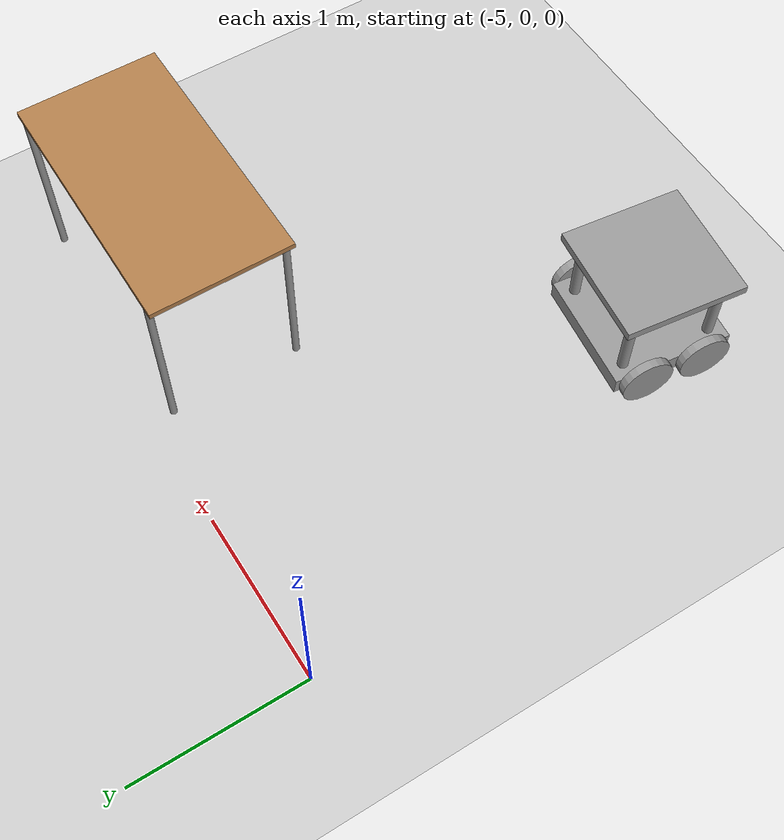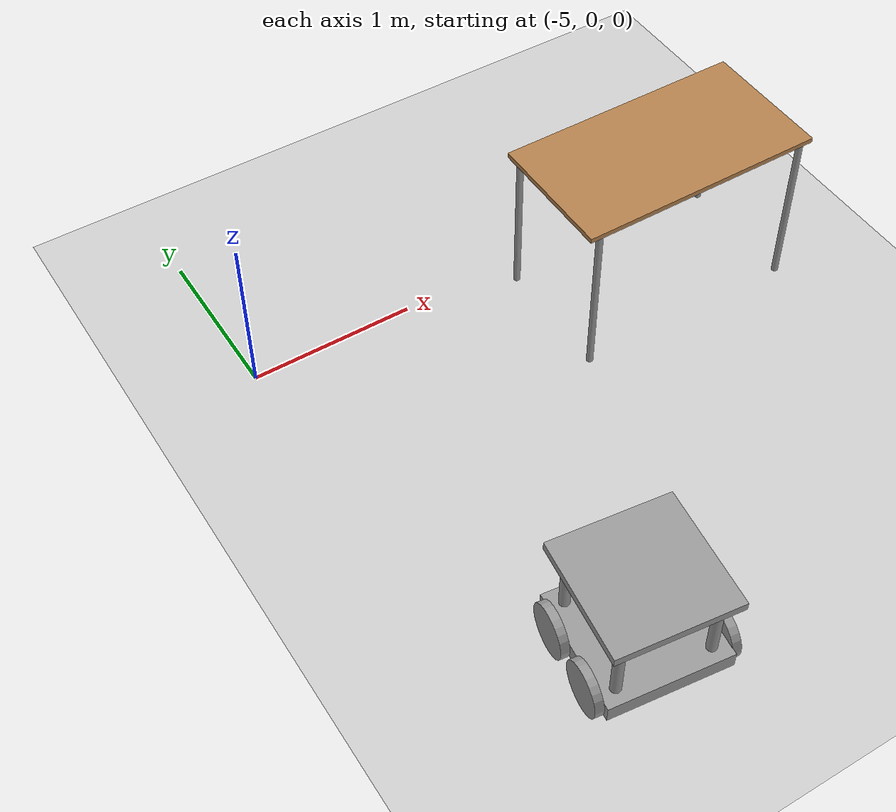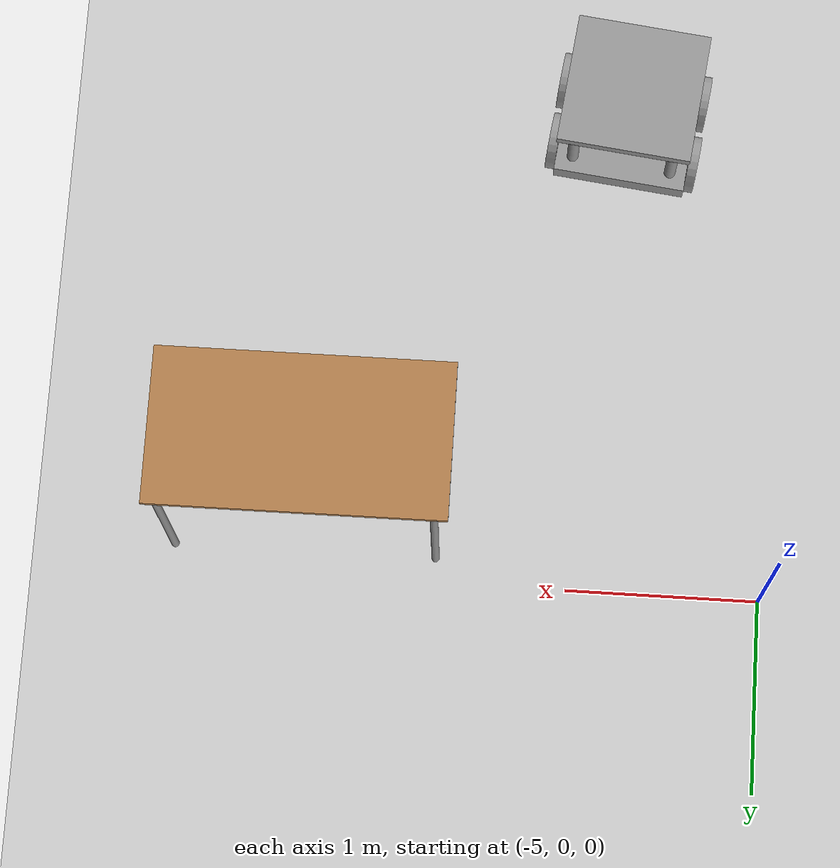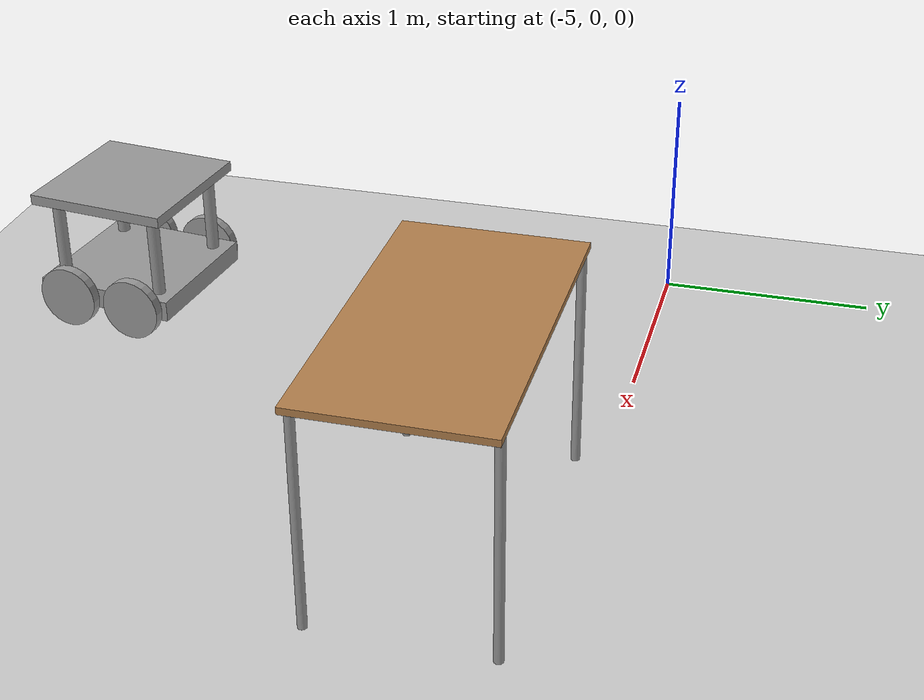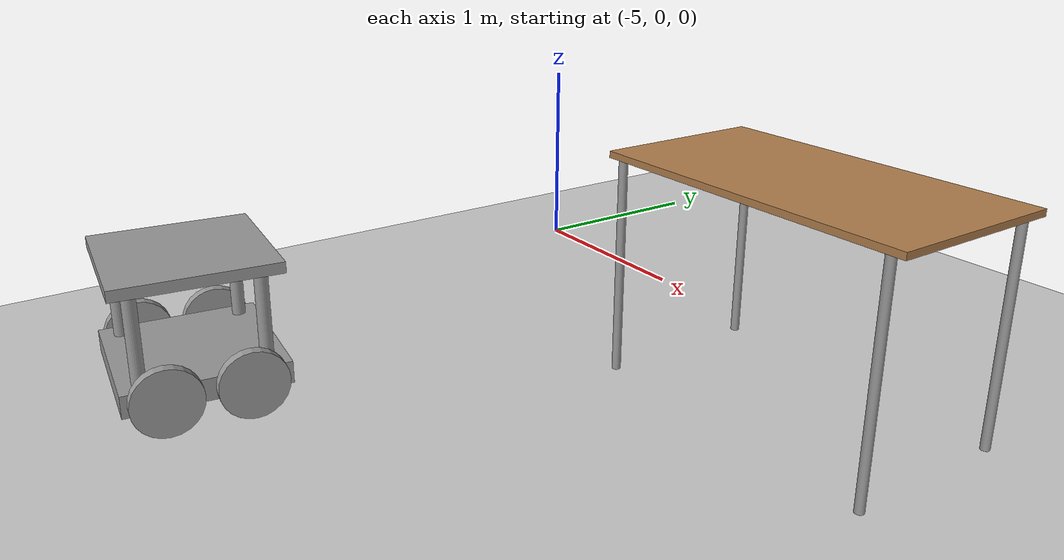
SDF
<sdf version="1.6">
 <world name="default">
  <model name="ground_plane">
   <static>1</static>
   <link name="link">
    <collision name="collision">
     <geometry><plane><normal>0 0 1</normal><size>100 100</size></plane></geometry>
     <surface>
      <contact><collide_bitmask>65535</collide_bitmask></contact>
      <friction><ode><mu>100</mu><mu2>50</mu2></ode></friction>
     </surface>
    </collision>
    <visual name="visual">
     <cast_shadows>0</cast_shadows>
     <geometry><plane><normal>0 0 1</normal><size>100 100</size></plane></geometry>
     <material>
      <script><uri>file://media/materials/scripts/gazebo.material</uri><name>Gazebo/Grey</name></script>
     </material>
    </visual>
   </link>
  </model>
  <model name="table">
   <static>1</static>
   <link name="link">
    <collision name="surface">
     <pose>0 0 1 0 -0 0</pose>
     <geometry><box><size>1.5 0.8 0.03</size></box></geometry>
     <surface><friction><ode><mu>0.6</mu><mu2>0.6</mu2></ode></friction></surface>
    </collision>
    <visual name="visual1">
     <pose>0 0 1 0 -0 0</pose>
     <geometry><box><size>1.5 0.8 0.03</size></box></geometry>
     <material>
      <script><uri>file://media/materials/scripts/gazebo.material</uri><name>Gazebo/Wood</name></script>
     </material>
    </visual>
    <collision name="front_left_leg">
     <pose>0.68 0.38 0.5 0 -0 0</pose>
     <geometry><cylinder><radius>0.02</radius><length>1</length></cylinder></geometry>
    </collision>
    <visual name="front_left_leg">
     <pose>0.68 0.38 0.5 0 -0 0</pose>
     <geometry><cylinder><radius>0.02</radius><length>1</length></cylinder></geometry>
     <material>
      <script><uri>file://media/materials/scripts/gazebo.material</uri><name>Gazebo/Grey</name></script>
     </material>
    </visual>
    <collision name="front_right_leg">
     <pose>0.68 -0.38 0.5 0 -0 0</pose>
     <geometry><cylinder><radius>0.02</radius><length>1</length></cylinder></geometry>
    </collision>
    <visual name="front_right_leg">
     <pose>0.68 -0.38 0.5 0 -0 0</pose>
     <geometry><cylinder><radius>0.02</radius><length>1</length></cylinder></geometry>
     <material>
      <script><uri>file://media/materials/scripts/gazebo.material</uri><name>Gazebo/Grey</name></script>
     </material>
    </visual>
    <collision name="back_right_leg">
     <pose>-0.68 -0.38 0.5 0 -0 0</pose>
     <geometry><cylinder><radius>0.02</radius><length>1</length></cylinder></geometry>
    </collision>
    <visual name="back_right_leg">
     <pose>-0.68 -0.38 0.5 0 -0 0</pose>
     <geometry><cylinder><radius>0.02</radius><length>1</length></cylinder></geometry>
     <material>
      <script><uri>file://media/materials/scripts/gazebo.material</uri><name>Gazebo/Grey</name></script>
     </material>
    </visual>
    <collision name="back_left_leg">
     <pose>-0.68 0.38 0.5 0 -0 0</pose>
     <geometry><cylinder><radius>0.02</radius><length>1</length></cylinder></geometry>
    </collision>
    <visual name="back_left_leg">
     <pose>-0.68 0.38 0.5 0 -0 0</pose>
     <geometry><cylinder><radius>0.02</radius><length>1</length></cylinder></geometry>
     <material>
      <script><uri>file://media/materials/scripts/gazebo.material</uri><name>Gazebo/Grey</name></script>
     </material>
    </visual>
   </link>
   <pose>-2.63746 -0.513306 0 0 -0 0</pose>
  </model>
  <model name="Robot_clone">
   <link name="link_0">
    <pose>-0 0 -0.1475 0 -0 0</pose>
    <inertial>
     <mass>1</mass>
     <inertia>
      <ixx>0.166667</ixx>
      <ixy>0</ixy>
      <ixz>0</ixz>
      <iyy>0.166667</iyy>
      <iyz>0</iyz>
      <izz>0.166667</izz>
     </inertia>
    </inertial>
    <visual name="visual">
     <geometry><box><size>0.7 0.7 0.1</size></box></geometry>
     <material>
      <lighting>1</lighting>
      <script><uri>file://media/materials/scripts/gazebo.material</uri><name>Gazebo/Grey</name></script>
      <shader type="pixel"><normal_map>__default__</normal_map></shader>
      <ambient>0.3 0.3 0.3 1</ambient>
      <diffuse>0.7 0.7 0.7 1</diffuse>
      <specular>0.01 0.01 0.01 1</specular>
      <emissive>0 0 0 1</emissive>
     </material>
    </visual>
    <collision name="collision">
     <geometry><box><size>0.7 0.7 0.1</size></box></geometry>
     <surface>
      <friction>
       <ode><mu>1</mu><mu2>1</mu2><fdir1>0 0 0</fdir1><slip1>0</slip1><slip2>0</slip2></ode>
       <torsional>
        <coefficient>1</coefficient>
        <patch_radius>0</patch_radius>
        <surface_radius>0</surface_radius>
        <use_patch_radius>1</use_patch_radius>
        <ode><slip>0</slip></ode>
       </torsional>
      </friction>
      <bounce><restitution_coefficient>0</restitution_coefficient><threshold>1e+06</threshold></bounce>
      <contact>
       <collide_without_contact>0</collide_without_contact>
       <collide_without_contact_bitmask>1</collide_without_contact_bitmask>
       <collide_bitmask>1</collide_bitmask>
       <ode>
        <soft_cfm>0</soft_cfm>
        <soft_erp>0.2</soft_erp>
        <kp>1e+13</kp>
        <kd>1</kd>
        <max_vel>0.01</max_vel>
        <min_depth>0</min_depth>
       </ode>
       <bullet>
        <split_impulse>1</split_impulse>
        <split_impulse_penetration_threshold>-0.01</split_impulse_penetration_threshold>
        <soft_cfm>0</soft_cfm>
        <soft_erp>0.2</soft_erp>
        <kp>1e+13</kp>
        <kd>1</kd>
       </bullet>
      </contact>
     </surface>
    </collision>
   </link>
   <link name="link_1">
    <pose>0.375 0.175 -0.1475 1.5608 -0 1.5608</pose>
    <inertial>
     <mass>1</mass>
     <inertia><ixx>0.145833</ixx><ixy>0</ixy><ixz>0</ixz><iyy>0.145833</iyy><iyz>0</iyz><izz>0.125</izz></inertia>
    </inertial>
    <visual name="visual">
     <geometry><cylinder><radius>0.15</radius><length>0.05</length></cylinder></geometry>
     <material>
      <lighting>1</lighting>
      <script><uri>file://media/materials/scripts/gazebo.material</uri><name>Gazebo/Grey</name></script>
      <shader type="pixel"><normal_map>__default__</normal_map></shader>
      <ambient>0.3 0.3 0.3 1</ambient>
      <diffuse>0.7 0.7 0.7 1</diffuse>
      <specular>0.01 0.01 0.01 1</specular>
      <emissive>0 0 0 1</emissive>
     </material>
    </visual>
    <collision name="collision">
     <geometry><cylinder><radius>0.15</radius><length>0.05</length></cylinder></geometry>
     <surface>
      <friction>
       <ode><mu>1</mu><mu2>1</mu2><fdir1>0 0 0</fdir1><slip1>0</slip1><slip2>0</slip2></ode>
       <torsional>
        <coefficient>1</coefficient>
        <patch_radius>0</patch_radius>
        <surface_radius>0</surface_radius>
        <use_patch_radius>1</use_patch_radius>
        <ode><slip>0</slip></ode>
       </torsional>
      </friction>
      <bounce><restitution_coefficient>0</restitution_coefficient><threshold>1e+06</threshold></bounce>
      <contact>
       <collide_without_contact>0</collide_without_contact>
       <collide_without_contact_bitmask>1</collide_without_contact_bitmask>
       <collide_bitmask>1</collide_bitmask>
       <ode>
        <soft_cfm>0</soft_cfm>
        <soft_erp>0.2</soft_erp>
        <kp>1e+13</kp>
        <kd>1</kd>
        <max_vel>0.01</max_vel>
        <min_depth>0</min_depth>
       </ode>
       <bullet>
        <split_impulse>1</split_impulse>
        <split_impulse_penetration_threshold>-0.01</split_impulse_penetration_threshold>
        <soft_cfm>0</soft_cfm>
        <soft_erp>0.2</soft_erp>
        <kp>1e+13</kp>
        <kd>1</kd>
       </bullet>
      </contact>
     </surface>
    </collision>
   </link>
   <link name="link_1_clone">
    <pose>0.375 -0.175 -0.1475 1.5608 -0 1.5608</pose>
    <inertial>
     <mass>1</mass>
     <inertia><ixx>0.145833</ixx><ixy>0</ixy><ixz>0</ixz><iyy>0.145833</iyy><iyz>0</iyz><izz>0.125</izz></inertia>
    </inertial>
    <visual name="visual">
     <geometry><cylinder><radius>0.15</radius><length>0.05</length></cylinder></geometry>
     <material>
      <lighting>1</lighting>
      <script><uri>file://media/materials/scripts/gazebo.material</uri><name>Gazebo/Grey</name></script>
      <shader type="pixel"><normal_map>__default__</normal_map></shader>
      <ambient>0.3 0.3 0.3 1</ambient>
      <diffuse>0.7 0.7 0.7 1</diffuse>
      <specular>0.01 0.01 0.01 1</specular>
      <emissive>0 0 0 1</emissive>
     </material>
    </visual>
    <collision name="collision">
     <geometry><cylinder><radius>0.15</radius><length>0.05</length></cylinder></geometry>
     <surface>
      <friction>
       <ode><mu>1</mu><mu2>1</mu2><fdir1>0 0 0</fdir1><slip1>0</slip1><slip2>0</slip2></ode>
       <torsional>
        <coefficient>1</coefficient>
        <patch_radius>0</patch_radius>
        <surface_radius>0</surface_radius>
        <use_patch_radius>1</use_patch_radius>
        <ode><slip>0</slip></ode>
       </torsional>
      </friction>
      <bounce><restitution_coefficient>0</restitution_coefficient><threshold>1e+06</threshold></bounce>
      <contact>
       <collide_without_contact>0</collide_without_contact>
       <collide_without_contact_bitmask>1</collide_without_contact_bitmask>
       <collide_bitmask>1</collide_bitmask>
       <ode>
        <soft_cfm>0</soft_cfm>
        <soft_erp>0.2</soft_erp>
        <kp>1e+13</kp>
        <kd>1</kd>
        <max_vel>0.01</max_vel>
        <min_depth>0</min_depth>
       </ode>
       <bullet>
        <split_impulse>1</split_impulse>
        <split_impulse_penetration_threshold>-0.01</split_impulse_penetration_threshold>
        <soft_cfm>0</soft_cfm>
        <soft_erp>0.2</soft_erp>
        <kp>1e+13</kp>
        <kd>1</kd>
       </bullet>
      </contact>
     </surface>
    </collision>
   </link>
   <link name="link_1_clone_clone">
    <pose>-0.375 -0.175 -0.1475 1.5608 -0 1.5608</pose>
    <inertial>
     <mass>1</mass>
     <inertia><ixx>0.145833</ixx><ixy>0</ixy><ixz>0</ixz><iyy>0.145833</iyy><iyz>0</iyz><izz>0.125</izz></inertia>
    </inertial>
    <visual name="visual">
     <geometry><cylinder><radius>0.15</radius><length>0.05</length></cylinder></geometry>
     <material>
      <lighting>1</lighting>
      <script><uri>file://media/materials/scripts/gazebo.material</uri><name>Gazebo/Grey</name></script>
      <shader type="pixel"><normal_map>__default__</normal_map></shader>
      <ambient>0.3 0.3 0.3 1</ambient>
      <diffuse>0.7 0.7 0.7 1</diffuse>
      <specular>0.01 0.01 0.01 1</specular>
      <emissive>0 0 0 1</emissive>
     </material>
    </visual>
    <collision name="collision">
     <geometry><cylinder><radius>0.15</radius><length>0.05</length></cylinder></geometry>
     <surface>
      <friction>
       <ode><mu>1</mu><mu2>1</mu2><fdir1>0 0 0</fdir1><slip1>0</slip1><slip2>0</slip2></ode>
       <torsional>
        <coefficient>1</coefficient>
        <patch_radius>0</patch_radius>
        <surface_radius>0</surface_radius>
        <use_patch_radius>1</use_patch_radius>
        <ode><slip>0</slip></ode>
       </torsional>
      </friction>
      <bounce><restitution_coefficient>0</restitution_coefficient><threshold>1e+06</threshold></bounce>
      <contact>
       <collide_without_contact>0</collide_without_contact>
       <collide_without_contact_bitmask>1</collide_without_contact_bitmask>
       <collide_bitmask>1</collide_bitmask>
       <ode>
        <soft_cfm>0</soft_cfm>
        <soft_erp>0.2</soft_erp>
        <kp>1e+13</kp>
        <kd>1</kd>
        <max_vel>0.01</max_vel>
        <min_depth>0</min_depth>
       </ode>
       <bullet>
        <split_impulse>1</split_impulse>
        <split_impulse_penetration_threshold>-0.01</split_impulse_penetration_threshold>
        <soft_cfm>0</soft_cfm>
        <soft_erp>0.2</soft_erp>
        <kp>1e+13</kp>
        <kd>1</kd>
       </bullet>
      </contact>
     </surface>
    </collision>
   </link>
   <link name="link_1_clone_clone_0">
    <pose>-0.375 0.175 -0.1475 1.5608 -0 1.5608</pose>
    <inertial>
     <mass>1</mass>
     <inertia><ixx>0.145833</ixx><ixy>0</ixy><ixz>0</ixz><iyy>0.145833</iyy><iyz>0</iyz><izz>0.125</izz></inertia>
    </inertial>
    <visual name="visual">
     <geometry><cylinder><radius>0.15</radius><length>0.05</length></cylinder></geometry>
     <material>
      <lighting>1</lighting>
      <script><uri>file://media/materials/scripts/gazebo.material</uri><name>Gazebo/Grey</name></script>
      <shader type="pixel"><normal_map>__default__</normal_map></shader>
      <ambient>0.3 0.3 0.3 1</ambient>
      <diffuse>0.7 0.7 0.7 1</diffuse>
      <specular>0.01 0.01 0.01 1</specular>
      <emissive>0 0 0 1</emissive>
     </material>
    </visual>
    <collision name="collision">
     <geometry><cylinder><radius>0.15</radius><length>0.05</length></cylinder></geometry>
     <surface>
      <friction>
       <ode><mu>1</mu><mu2>1</mu2><fdir1>0 0 0</fdir1><slip1>0</slip1><slip2>0</slip2></ode>
       <torsional>
        <coefficient>1</coefficient>
        <patch_radius>0</patch_radius>
        <surface_radius>0</surface_radius>
        <use_patch_radius>1</use_patch_radius>
        <ode><slip>0</slip></ode>
       </torsional>
      </friction>
      <bounce><restitution_coefficient>0</restitution_coefficient><threshold>1e+06</threshold></bounce>
      <contact>
       <collide_without_contact>0</collide_without_contact>
       <collide_without_contact_bitmask>1</collide_without_contact_bitmask>
       <collide_bitmask>1</collide_bitmask>
       <ode>
        <soft_cfm>0</soft_cfm>
        <soft_erp>0.2</soft_erp>
        <kp>1e+13</kp>
        <kd>1</kd>
        <max_vel>0.01</max_vel>
        <min_depth>0</min_depth>
       </ode>
       <bullet>
        <split_impulse>1</split_impulse>
        <split_impulse_penetration_threshold>-0.01</split_impulse_penetration_threshold>
        <soft_cfm>0</soft_cfm>
        <soft_erp>0.2</soft_erp>
        <kp>1e+13</kp>
        <kd>1</kd>
       </bullet>
      </contact>
     </surface>
    </collision>
   </link>
   <link name="link_3">
    <pose>0.2625 0.2625 0.1025 0 -0 0</pose>
    <inertial>
     <mass>1</mass>
     <inertia><ixx>0.145833</ixx><ixy>0</ixy><ixz>0</ixz><iyy>0.145833</iyy><iyz>0</iyz><izz>0.125</izz></inertia>
    </inertial>
    <visual name="visual">
     <geometry><cylinder><radius>0.03</radius><length>0.4</length></cylinder></geometry>
     <material>
      <lighting>1</lighting>
      <script><uri>file://media/materials/scripts/gazebo.material</uri><name>Gazebo/Grey</name></script>
      <shader type="pixel"><normal_map>__default__</normal_map></shader>
      <ambient>0.3 0.3 0.3 1</ambient>
      <diffuse>0.7 0.7 0.7 1</diffuse>
      <specular>0.01 0.01 0.01 1</specular>
      <emissive>0 0 0 1</emissive>
     </material>
    </visual>
    <collision name="collision">
     <geometry><cylinder><radius>0.03</radius><length>0.4</length></cylinder></geometry>
     <surface>
      <friction>
       <ode><mu>1</mu><mu2>1</mu2><fdir1>0 0 0</fdir1><slip1>0</slip1><slip2>0</slip2></ode>
       <torsional>
        <coefficient>1</coefficient>
        <patch_radius>0</patch_radius>
        <surface_radius>0</surface_radius>
        <use_patch_radius>1</use_patch_radius>
        <ode><slip>0</slip></ode>
       </torsional>
      </friction>
      <bounce><restitution_coefficient>0</restitution_coefficient><threshold>1e+06</threshold></bounce>
      <contact>
       <collide_without_contact>0</collide_without_contact>
       <collide_without_contact_bitmask>1</collide_without_contact_bitmask>
       <collide_bitmask>1</collide_bitmask>
       <ode>
        <soft_cfm>0</soft_cfm>
        <soft_erp>0.2</soft_erp>
        <kp>1e+13</kp>
        <kd>1</kd>
        <max_vel>0.01</max_vel>
        <min_depth>0</min_depth>
       </ode>
       <bullet>
        <split_impulse>1</split_impulse>
        <split_impulse_penetration_threshold>-0.01</split_impulse_penetration_threshold>
        <soft_cfm>0</soft_cfm>
        <soft_erp>0.2</soft_erp>
        <kp>1e+13</kp>
        <kd>1</kd>
       </bullet>
      </contact>
     </surface>
    </collision>
   </link>
   <link name="link_3_clone">
    <pose>0.2625 -0.2625 0.1025 0 -0 0</pose>
    <inertial>
     <mass>1</mass>
     <inertia><ixx>0.145833</ixx><ixy>0</ixy><ixz>0</ixz><iyy>0.145833</iyy><iyz>0</iyz><izz>0.125</izz></inertia>
    </inertial>
    <visual name="visual">
     <geometry><cylinder><radius>0.03</radius><length>0.4</length></cylinder></geometry>
     <material>
      <lighting>1</lighting>
      <script><uri>file://media/materials/scripts/gazebo.material</uri><name>Gazebo/Grey</name></script>
      <shader type="pixel"><normal_map>__default__</normal_map></shader>
      <ambient>0.3 0.3 0.3 1</ambient>
      <diffuse>0.7 0.7 0.7 1</diffuse>
      <specular>0.01 0.01 0.01 1</specular>
      <emissive>0 0 0 1</emissive>
     </material>
    </visual>
    <collision name="collision">
     <geometry><cylinder><radius>0.03</radius><length>0.4</length></cylinder></geometry>
     <surface>
      <friction>
       <ode><mu>1</mu><mu2>1</mu2><fdir1>0 0 0</fdir1><slip1>0</slip1><slip2>0</slip2></ode>
       <torsional>
        <coefficient>1</coefficient>
        <patch_radius>0</patch_radius>
        <surface_radius>0</surface_radius>
        <use_patch_radius>1</use_patch_radius>
        <ode><slip>0</slip></ode>
       </torsional>
      </friction>
      <bounce><restitution_coefficient>0</restitution_coefficient><threshold>1e+06</threshold></bounce>
      <contact>
       <collide_without_contact>0</collide_without_contact>
       <collide_without_contact_bitmask>1</collide_without_contact_bitmask>
       <collide_bitmask>1</collide_bitmask>
       <ode>
        <soft_cfm>0</soft_cfm>
        <soft_erp>0.2</soft_erp>
        <kp>1e+13</kp>
        <kd>1</kd>
        <max_vel>0.01</max_vel>
        <min_depth>0</min_depth>
       </ode>
       <bullet>
        <split_impulse>1</split_impulse>
        <split_impulse_penetration_threshold>-0.01</split_impulse_penetration_threshold>
        <soft_cfm>0</soft_cfm>
        <soft_erp>0.2</soft_erp>
        <kp>1e+13</kp>
        <kd>1</kd>
       </bullet>
      </contact>
     </surface>
    </collision>
   </link>
   <link name="link_3_clone_0">
    <pose>-0.2625 -0.2625 0.1025 0 -0 0</pose>
    <inertial>
     <mass>1</mass>
     <inertia><ixx>0.145833</ixx><ixy>0</ixy><ixz>0</ixz><iyy>0.145833</iyy><iyz>0</iyz><izz>0.125</izz></inertia>
    </inertial>
    <visual name="visual">
     <geometry><cylinder><radius>0.03</radius><length>0.4</length></cylinder></geometry>
     <material>
      <lighting>1</lighting>
      <script><uri>file://media/materials/scripts/gazebo.material</uri><name>Gazebo/Grey</name></script>
      <shader type="pixel"><normal_map>__default__</normal_map></shader>
      <ambient>0.3 0.3 0.3 1</ambient>
      <diffuse>0.7 0.7 0.7 1</diffuse>
      <specular>0.01 0.01 0.01 1</specular>
      <emissive>0 0 0 1</emissive>
     </material>
    </visual>
    <collision name="collision">
     <geometry><cylinder><radius>0.03</radius><length>0.4</length></cylinder></geometry>
     <surface>
      <friction>
       <ode><mu>1</mu><mu2>1</mu2><fdir1>0 0 0</fdir1><slip1>0</slip1><slip2>0</slip2></ode>
       <torsional>
        <coefficient>1</coefficient>
        <patch_radius>0</patch_radius>
        <surface_radius>0</surface_radius>
        <use_patch_radius>1</use_patch_radius>
        <ode><slip>0</slip></ode>
       </torsional>
      </friction>
      <bounce><restitution_coefficient>0</restitution_coefficient><threshold>1e+06</threshold></bounce>
      <contact>
       <collide_without_contact>0</collide_without_contact>
       <collide_without_contact_bitmask>1</collide_without_contact_bitmask>
       <collide_bitmask>1</collide_bitmask>
       <ode>
        <soft_cfm>0</soft_cfm>
        <soft_erp>0.2</soft_erp>
        <kp>1e+13</kp>
        <kd>1</kd>
        <max_vel>0.01</max_vel>
        <min_depth>0</min_depth>
       </ode>
       <bullet>
        <split_impulse>1</split_impulse>
        <split_impulse_penetration_threshold>-0.01</split_impulse_penetration_threshold>
        <soft_cfm>0</soft_cfm>
        <soft_erp>0.2</soft_erp>
        <kp>1e+13</kp>
        <kd>1</kd>
       </bullet>
      </contact>
     </surface>
    </collision>
   </link>
   <link name="link_3_clone_1">
    <pose>-0.2625 0.2625 0.1025 0 -0 0</pose>
    <inertial>
     <mass>1</mass>
     <inertia><ixx>0.145833</ixx><ixy>0</ixy><ixz>0</ixz><iyy>0.145833</iyy><iyz>0</iyz><izz>0.125</izz></inertia>
    </inertial>
    <visual name="visual">
     <geometry><cylinder><radius>0.03</radius><length>0.4</length></cylinder></geometry>
     <material>
      <lighting>1</lighting>
      <script><uri>file://media/materials/scripts/gazebo.material</uri><name>Gazebo/Grey</name></script>
      <shader type="pixel"><normal_map>__default__</normal_map></shader>
      <ambient>0.3 0.3 0.3 1</ambient>
      <diffuse>0.7 0.7 0.7 1</diffuse>
      <specular>0.01 0.01 0.01 1</specular>
      <emissive>0 0 0 1</emissive>
     </material>
    </visual>
    <collision name="collision">
     <geometry><cylinder><radius>0.03</radius><length>0.4</length></cylinder></geometry>
     <surface>
      <friction>
       <ode><mu>1</mu><mu2>1</mu2><fdir1>0 0 0</fdir1><slip1>0</slip1><slip2>0</slip2></ode>
       <torsional>
        <coefficient>1</coefficient>
        <patch_radius>0</patch_radius>
        <surface_radius>0</surface_radius>
        <use_patch_radius>1</use_patch_radius>
        <ode><slip>0</slip></ode>
       </torsional>
      </friction>
      <bounce><restitution_coefficient>0</restitution_coefficient><threshold>1e+06</threshold></bounce>
      <contact>
       <collide_without_contact>0</collide_without_contact>
       <collide_without_contact_bitmask>1</collide_without_contact_bitmask>
       <collide_bitmask>1</collide_bitmask>
       <ode>
        <soft_cfm>0</soft_cfm>
        <soft_erp>0.2</soft_erp>
        <kp>1e+13</kp>
        <kd>1</kd>
        <max_vel>0.01</max_vel>
        <min_depth>0</min_depth>
       </ode>
       <bullet>
        <split_impulse>1</split_impulse>
        <split_impulse_penetration_threshold>-0.01</split_impulse_penetration_threshold>
        <soft_cfm>0</soft_cfm>
        <soft_erp>0.2</soft_erp>
        <kp>1e+13</kp>
        <kd>1</kd>
       </bullet>
      </contact>
     </surface>
    </collision>
   </link>
   <link name="link_4">
    <pose>-0 0 0.3275 0 -0 0</pose>
    <inertial>
     <mass>1</mass>
     <inertia>
      <ixx>0.166667</ixx>
      <ixy>0</ixy>
      <ixz>0</ixz>
      <iyy>0.166667</iyy>
      <iyz>0</iyz>
      <izz>0.166667</izz>
     </inertia>
    </inertial>
    <visual name="visual">
     <geometry><box><size>0.7 0.7 0.05</size></box></geometry>
     <material>
      <lighting>1</lighting>
      <script><uri>file://media/materials/scripts/gazebo.material</uri><name>Gazebo/Grey</name></script>
      <shader type="pixel"><normal_map>__default__</normal_map></shader>
      <ambient>0.3 0.3 0.3 1</ambient>
      <diffuse>0.7 0.7 0.7 1</diffuse>
      <specular>0.01 0.01 0.01 1</specular>
      <emissive>0 0 0 1</emissive>
     </material>
    </visual>
    <collision name="collision">
     <geometry><box><size>0.7 0.7 0.05</size></box></geometry>
     <surface>
      <friction>
       <ode><mu>1</mu><mu2>1</mu2><fdir1>0 0 0</fdir1><slip1>0</slip1><slip2>0</slip2></ode>
       <torsional>
        <coefficient>1</coefficient>
        <patch_radius>0</patch_radius>
        <surface_radius>0</surface_radius>
        <use_patch_radius>1</use_patch_radius>
        <ode><slip>0</slip></ode>
       </torsional>
      </friction>
      <bounce><restitution_coefficient>0</restitution_coefficient><threshold>1e+06</threshold></bounce>
      <contact>
       <collide_without_contact>0</collide_without_contact>
       <collide_without_contact_bitmask>1</collide_without_contact_bitmask>
       <collide_bitmask>1</collide_bitmask>
       <ode>
        <soft_cfm>0</soft_cfm>
        <soft_erp>0.2</soft_erp>
        <kp>1e+13</kp>
        <kd>1</kd>
        <max_vel>0.01</max_vel>
        <min_depth>0</min_depth>
       </ode>
       <bullet>
        <split_impulse>1</split_impulse>
        <split_impulse_penetration_threshold>-0.01</split_impulse_penetration_threshold>
        <soft_cfm>0</soft_cfm>
        <soft_erp>0.2</soft_erp>
        <kp>1e+13</kp>
        <kd>1</kd>
       </bullet>
      </contact>
     </surface>
    </collision>
   </link>
   <joint name="link_0_JOINT_0" type="revolute">
    <parent>link_0</parent>
    <child>link_1_clone_clone_0</child>
    <axis>
     <xyz>0 0 1</xyz>
     <use_parent_model_frame>0</use_parent_model_frame>
     <limit>
      <lower>-1.79769e+308</lower>
      <upper>1.79769e+308</upper>
      <effort>-1</effort>
      <velocity>-1</velocity>
     </limit>
     <dynamics>
      <spring_reference>0</spring_reference>
      <spring_stiffness>0</spring_stiffness>
      <damping>0</damping>
      <friction>0</friction>
     </dynamics>
     <use_parent_model_frame>1</use_parent_model_frame>
    </axis>
    <physics>
     <ode><limit><cfm>0</cfm><erp>0.2</erp></limit><suspension><cfm>0</cfm><erp>0.2</erp></suspension></ode>
    </physics>
   </joint>
   <joint name="link_0_JOINT_2" type="revolute">
    <parent>link_0</parent>
    <child>link_1_clone_clone</child>
    <axis>
     <xyz>0 0 1</xyz>
     <use_parent_model_frame>0</use_parent_model_frame>
     <limit>
      <lower>-1.79769e+308</lower>
      <upper>1.79769e+308</upper>
      <effort>-1</effort>
      <velocity>-1</velocity>
     </limit>
     <dynamics>
      <spring_reference>0</spring_reference>
      <spring_stiffness>0</spring_stiffness>
      <damping>0</damping>
      <friction>0</friction>
     </dynamics>
     <use_parent_model_frame>1</use_parent_model_frame>
    </axis>
    <physics>
     <ode><limit><cfm>0</cfm><erp>0.2</erp></limit><suspension><cfm>0</cfm><erp>0.2</erp></suspension></ode>
    </physics>
   </joint>
   <joint name="link_0_JOINT_3" type="revolute">
    <parent>link_0</parent>
    <child>link_1</child>
    <axis>
     <xyz>1 0 0</xyz>
     <use_parent_model_frame>0</use_parent_model_frame>
     <limit>
      <lower>-1.79769e+308</lower>
      <upper>1.79769e+308</upper>
      <effort>-1</effort>
      <velocity>-1</velocity>
     </limit>
     <dynamics>
      <spring_reference>0</spring_reference>
      <spring_stiffness>0</spring_stiffness>
      <damping>0</damping>
     </dynamics>
     <use_parent_model_frame>1</use_parent_model_frame>
    </axis>
    <physics>
     <ode><limit><cfm>0</cfm><erp>0.2</erp></limit><suspension><cfm>0</cfm><erp>0.2</erp></suspension></ode>
    </physics>
   </joint>
   <joint name="link_0_JOINT_4" type="revolute">
    <parent>link_0</parent>
    <child>link_1_clone</child>
    <axis>
     <xyz>0 0 1</xyz>
     <use_parent_model_frame>0</use_parent_model_frame>
     <limit>
      <lower>-1.79769e+308</lower>
      <upper>1.79769e+308</upper>
      <effort>-1</effort>
      <velocity>-1</velocity>
     </limit>
     <dynamics>
      <spring_reference>0</spring_reference>
      <spring_stiffness>0</spring_stiffness>
      <damping>0</damping>
      <friction>0</friction>
     </dynamics>
     <use_parent_model_frame>1</use_parent_model_frame>
    </axis>
    <physics>
     <ode><limit><cfm>0</cfm><erp>0.2</erp></limit><suspension><cfm>0</cfm><erp>0.2</erp></suspension></ode>
    </physics>
   </joint>
   <joint name="link_0_JOINT_5" type="fixed">
    <parent>link_0</parent>
    <child>link_3</child>
    <physics>
     <ode><limit><cfm>0</cfm><erp>0.2</erp></limit><suspension><cfm>0</cfm><erp>0.2</erp></suspension></ode>
    </physics>
   </joint>
   <joint name="link_0_JOINT_7" type="revolute">
    <parent>link_0</parent>
    <child>link_3_clone</child>
    <axis>
     <xyz>1 0 0</xyz>
     <use_parent_model_frame>0</use_parent_model_frame>
     <limit>
      <lower>-1.79769e+308</lower>
      <upper>1.79769e+308</upper>
      <effort>-1</effort>
      <velocity>-1</velocity>
     </limit>
     <dynamics>
      <spring_reference>0</spring_reference>
      <spring_stiffness>0</spring_stiffness>
      <damping>0</damping>
     </dynamics>
     <use_parent_model_frame>1</use_parent_model_frame>
    </axis>
    <physics>
     <ode><limit><cfm>0</cfm><erp>0.2</erp></limit><suspension><cfm>0</cfm><erp>0.2</erp></suspension></ode>
    </physics>
   </joint>
   <joint name="link_0_JOINT_8" type="fixed">
    <parent>link_0</parent>
    <child>link_3_clone_1</child>
    <physics>
     <ode><limit><cfm>0</cfm><erp>0.2</erp></limit><suspension><cfm>0</cfm><erp>0.2</erp></suspension></ode>
    </physics>
   </joint>
   <joint name="link_0_JOINT_9" type="fixed">
    <parent>link_0</parent>
    <child>link_3_clone_0</child>
    <physics>
     <ode><limit><cfm>0</cfm><erp>0.2</erp></limit><suspension><cfm>0</cfm><erp>0.2</erp></suspension></ode>
    </physics>
   </joint>
   <joint name="link_4_JOINT_10" type="fixed">
    <parent>link_4</parent>
    <child>link_3</child>
    <pose>0 0 0 -0.05 0 0</pose>
    <physics>
     <ode><limit><cfm>0</cfm><erp>0.2</erp></limit><suspension><cfm>0</cfm><erp>0.2</erp></suspension></ode>
    </physics>
   </joint>
   <joint name="link_4_JOINT_11" type="fixed">
    <parent>link_4</parent>
    <child>link_3_clone</child>
    <pose>0 0 0 -0.04 0 0</pose>
    <physics>
     <ode><limit><cfm>0</cfm><erp>0.2</erp></limit><suspension><cfm>0</cfm><erp>0.2</erp></suspension></ode>
    </physics>
   </joint>
   <joint name="link_4_JOINT_12" type="fixed">
    <parent>link_4</parent>
    <child>link_3_clone_0</child>
    <pose>0 0 0 0 0 -0.05</pose>
    <physics>
     <ode><limit><cfm>0</cfm><erp>0.2</erp></limit><suspension><cfm>0</cfm><erp>0.2</erp></suspension></ode>
    </physics>
   </joint>
   <joint name="link_4_JOINT_13" type="fixed">
    <parent>link_4</parent>
    <child>link_3_clone_1</child>
    <physics>
     <ode><limit><cfm>0</cfm><erp>0.2</erp></limit><suspension><cfm>0</cfm><erp>0.2</erp></suspension></ode>
    </physics>
   </joint>
   <static>0</static>
   <pose>-4.21018 -2.5515 0.297741 -9e-06 7e-06 -0.122779</pose>
  </model>
 </world>
</sdf>
